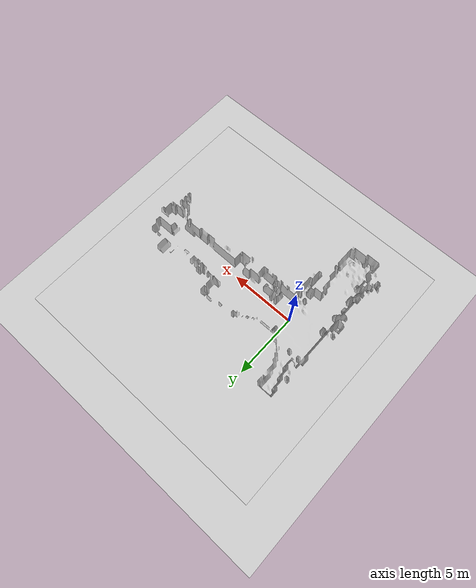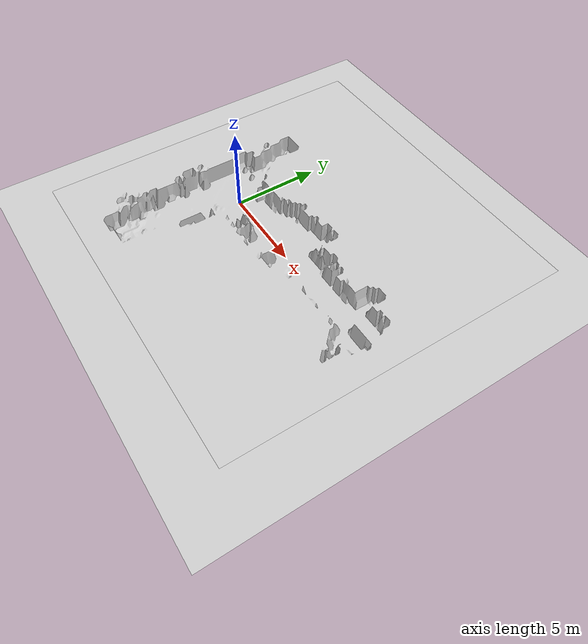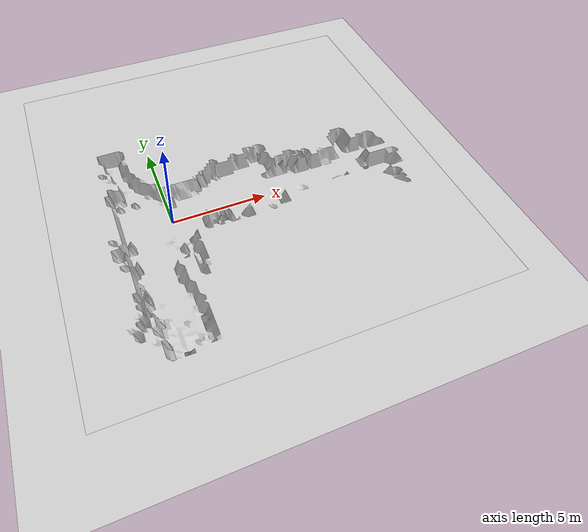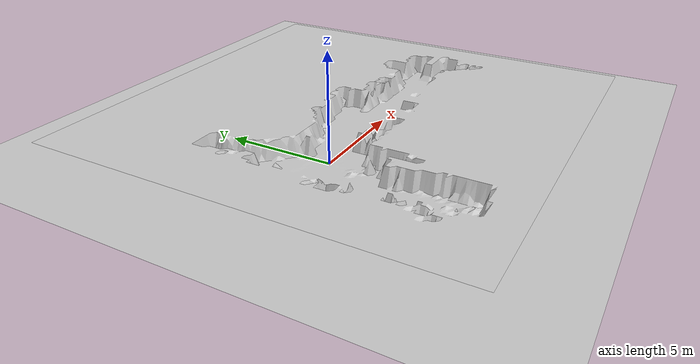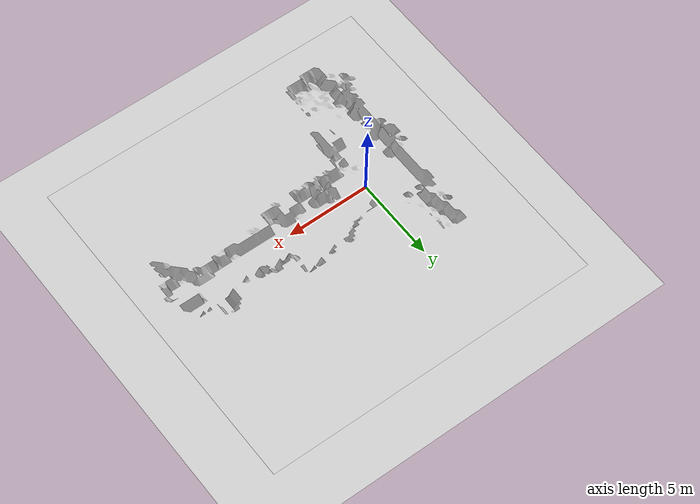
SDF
<?xml version="1.0" ?>
<sdf version="1.8">
  <world name="simpel_world">
    <physics name="1ms" type="ignored">
      <max_step_size>0.001</max_step_size>
      <real_time_factor>1.0</real_time_factor>
    </physics>
    <plugin
        filename="libignition-gazebo-physics-system.so"
        name="ignition::gazebo::systems::Physics">
    </plugin>
    <plugin
        filename="libignition-gazebo-user-commands-system.so"
        name="ignition::gazebo::systems::UserCommands">
    </plugin>
    <plugin
        filename="libignition-gazebo-scene-broadcaster-system.so"
        name="ignition::gazebo::systems::SceneBroadcaster">
    </plugin>

    <plugin
      filename="libignition-gazebo-sensors-system.so"
      name="ignition::gazebo::systems::Sensors">
      <render_engine>ogre2</render_engine>
    </plugin>

    <light type="directional" name="sun">
      <cast_shadows>true</cast_shadows>
      <pose>0 0 10 0 0 0</pose>
      <diffuse>0.8 0.8 0.8 1</diffuse>
      <specular>0.2 0.2 0.2 1</specular>
      <attenuation>
        <range>1000</range>
        <constant>0.9</constant>
        <linear>0.01</linear>
        <quadratic>0.001</quadratic>
      </attenuation>
      <direction>-0.5 0.1 -0.9</direction>
    </light>
    <model name="ground_plane">
      <static>true</static>
      <link name="link">
        <collision name="collision">
          <geometry>
            <plane>
              <normal>0 0 1</normal>
            </plane>
          </geometry>
        </collision>
        <visual name="visual">
          <geometry>
            <plane>
              <normal>0 0 1</normal>
              <size>100 100</size>
            </plane>
          </geometry>
          <material>
            <ambient>0.8 0.8 0.8 1</ambient>
            <diffuse>0.8 0.8 0.8 1</diffuse>
            <specular>0.8 0.8 0.8 1</specular>
          </material>
        </visual>
      </link>
    </model>
    <model name="fib14mesh">
      <static>true</static>
      <pose>-1 1 -0.01 0 0 0</pose>
      <link name="link">
        <collision name="collision">
          <geometry>
            <mesh>
              <uri>worlds://meshes/fib14.dae</uri>
              <scale>0.5 0.55 0.6</scale>
            </mesh>
          </geometry>
        </collision>
        <visual name="visual">
          <geometry>
            <mesh>
              <uri>worlds://meshes/fib14.dae</uri>
              <scale>0.5 0.55 0.6</scale>
            </mesh>
          </geometry>
          <material>
            <ambient>0.5 0.5 0.5 1</ambient>
            <diffuse>0.8 0.8 0.8 1</diffuse>
            <specular>0.8 0.8 0.8 1</specular>
          </material>
        </visual>
      </link>
    </model>
  </world>
</sdf>
